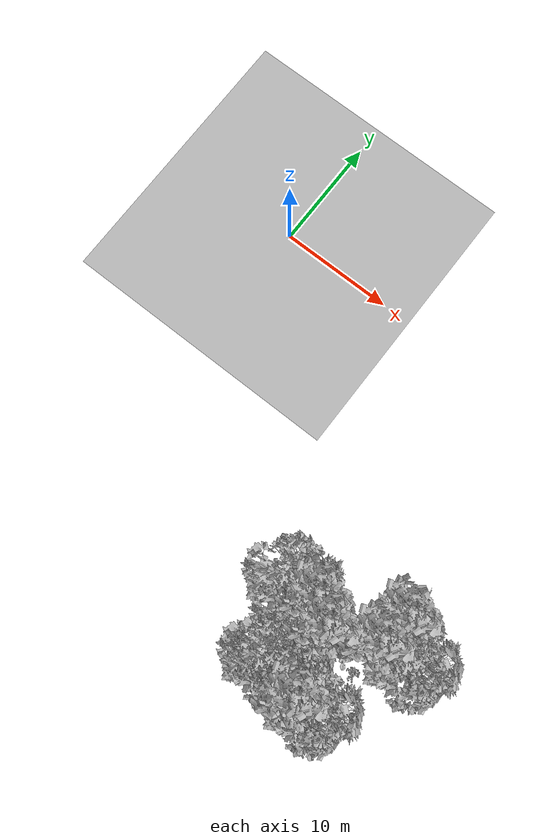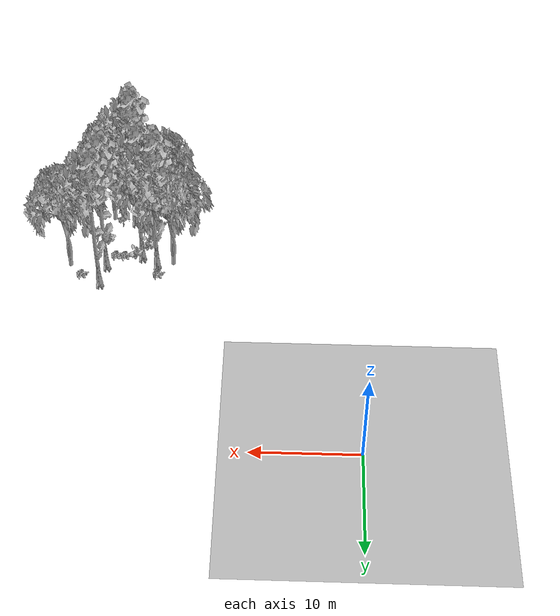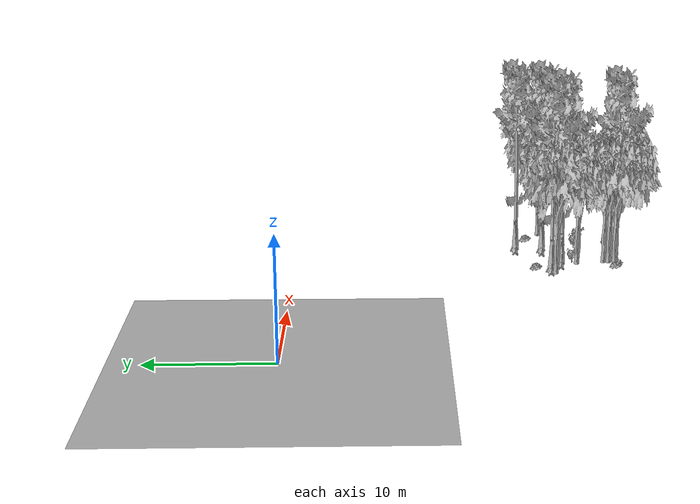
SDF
<sdf version="1.7">
 <world name="default">
  <model name="ground_plane">
   <static>1</static>
   <link name="link">
    <collision name="collision">
     <pose>-50 0 0 0 -0 0</pose>
     <geometry><plane><normal>0 0 1</normal><size>80 80</size></plane></geometry>
     <surface><contact><ode><min_depth>0.01</min_depth><max_vel>0</max_vel></ode></contact></surface>
    </collision>
    <visual name="grass">
     <cast_shadows>0</cast_shadows>
     <geometry>
      <mesh>
       <scale>0.46714285714285714 0.46714285714285714 0.1</scale>
       <uri>file://grass_plane/meshes/grass_plane.dae</uri>
      </mesh>
     </geometry>
    </visual>
   </link>
  </model>
  <model name="Tree 22">
   <static>1</static>
   <pose>24.61093063910306 -22.099798573518363 0 1.57079 -0 0</pose>
   <link name="link">
    <collision name="collision">
     <geometry><mesh><scale>3.5 5 3.5</scale><uri>model://tree_9/meshes/tree_9.obj</uri></mesh></geometry>
    </collision>
    <visual name="visual">
     <geometry><mesh><scale>3.5 5 3.5</scale><uri>model://tree_9/meshes/tree_9.obj</uri></mesh></geometry>
    </visual>
   </link>
  </model>
  <model name="Tree 118">
   <static>1</static>
   <pose>25.06233795883236 -19.751188143016158 0 1.57079 -0 0</pose>
   <link name="link">
    <collision name="collision">
     <geometry><mesh><scale>3.5 5 3.5</scale><uri>model://tree_9/meshes/tree_9.obj</uri></mesh></geometry>
    </collision>
    <visual name="visual">
     <geometry><mesh><scale>3.5 5 3.5</scale><uri>model://tree_9/meshes/tree_9.obj</uri></mesh></geometry>
    </visual>
   </link>
  </model>
  <model name="Tree 210">
   <static>1</static>
   <pose>21.211009468980002 -23.447928985658038 0 1.57079 -0 0</pose>
   <link name="link">
    <collision name="collision">
     <geometry><mesh><scale>3.5 5 3.5</scale><uri>model://tree_9/meshes/tree_9.obj</uri></mesh></geometry>
    </collision>
    <visual name="visual">
     <geometry><mesh><scale>3.5 5 3.5</scale><uri>model://tree_9/meshes/tree_9.obj</uri></mesh></geometry>
    </visual>
   </link>
  </model>
  <model name="Tree 284">
   <static>1</static>
   <pose>22.3522800145071 -28.369159853775486 0 1.57079 -0 0</pose>
   <link name="link">
    <collision name="collision">
     <geometry><mesh><scale>3.5 5 3.5</scale><uri>model://tree_9/meshes/tree_9.obj</uri></mesh></geometry>
    </collision>
    <visual name="visual">
     <geometry><mesh><scale>3.5 5 3.5</scale><uri>model://tree_9/meshes/tree_9.obj</uri></mesh></geometry>
    </visual>
   </link>
  </model>
  <model name="Tree 336">
   <static>1</static>
   <pose>19.67779719124666 -22.382257653513598 0 1.57079 -0 0</pose>
   <link name="link">
    <collision name="collision">
     <geometry><mesh><scale>3.5 5 3.5</scale><uri>model://tree_9/meshes/tree_9.obj</uri></mesh></geometry>
    </collision>
    <visual name="visual">
     <geometry><mesh><scale>3.5 5 3.5</scale><uri>model://tree_9/meshes/tree_9.obj</uri></mesh></geometry>
    </visual>
   </link>
  </model>
  <model name="Tree 345">
   <static>1</static>
   <pose>20.036384099519353 -27.986623376723692 0 1.57079 -0 0</pose>
   <link name="link">
    <collision name="collision">
     <geometry><mesh><scale>3.5 5 3.5</scale><uri>model://tree_2/meshes/tree_2.obj</uri></mesh></geometry>
    </collision>
    <visual name="visual">
     <geometry><mesh><scale>3.5 5 3.5</scale><uri>model://tree_2/meshes/tree_2.obj</uri></mesh></geometry>
    </visual>
   </link>
  </model>
  <model name="Tree 447">
   <static>1</static>
   <pose>17.979560691073615 -22.612262606566684 0 1.57079 -0 0</pose>
   <link name="link">
    <collision name="collision">
     <geometry><mesh><scale>3.5 5 3.5</scale><uri>model://tree_2/meshes/tree_2.obj</uri></mesh></geometry>
    </collision>
    <visual name="visual">
     <geometry><mesh><scale>3.5 5 3.5</scale><uri>model://tree_2/meshes/tree_2.obj</uri></mesh></geometry>
    </visual>
   </link>
  </model>
  <model name="Tree 494">
   <static>1</static>
   <pose>24.354481711630783 -28.76402890722 0 1.57079 -0 0</pose>
   <link name="link">
    <collision name="collision">
     <geometry><mesh><scale>3.5 5 3.5</scale><uri>model://tree_2/meshes/tree_2.obj</uri></mesh></geometry>
    </collision>
    <visual name="visual">
     <geometry><mesh><scale>3.5 5 3.5</scale><uri>model://tree_2/meshes/tree_2.obj</uri></mesh></geometry>
    </visual>
   </link>
  </model>
  <model name="Tree 496">
   <static>1</static>
   <pose>20.330879873167582 -24.713452092112576 0 1.57079 -0 0</pose>
   <link name="link">
    <collision name="collision">
     <geometry><mesh><scale>3.5 5 3.5</scale><uri>model://tree_2/meshes/tree_2.obj</uri></mesh></geometry>
    </collision>
    <visual name="visual">
     <geometry><mesh><scale>3.5 5 3.5</scale><uri>model://tree_2/meshes/tree_2.obj</uri></mesh></geometry>
    </visual>
   </link>
  </model>
  <model name="Tree 592">
   <static>1</static>
   <pose>20.643086307787293 -27.569086030416415 0 1.57079 -0 0</pose>
   <link name="link">
    <collision name="collision">
     <geometry><mesh><scale>3.5 5 3.5</scale><uri>model://tree_2/meshes/tree_2.obj</uri></mesh></geometry>
    </collision>
    <visual name="visual">
     <geometry><mesh><scale>3.5 5 3.5</scale><uri>model://tree_2/meshes/tree_2.obj</uri></mesh></geometry>
    </visual>
   </link>
  </model>
  <model name="Tree 615">
   <static>1</static>
   <pose>20.643252035565368 -27.104846149797446 0 1.57079 -0 0</pose>
   <link name="link">
    <collision name="collision">
     <geometry><mesh><scale>3.5 5 3.5</scale><uri>model://tree_2/meshes/tree_2.obj</uri></mesh></geometry>
    </collision>
    <visual name="visual">
     <geometry><mesh><scale>3.5 5 3.5</scale><uri>model://tree_2/meshes/tree_2.obj</uri></mesh></geometry>
    </visual>
   </link>
  </model>
  <model name="Tree 616">
   <static>1</static>
   <pose>28.03475863568353 -22.13498378864612 0 1.57079 -0 0</pose>
   <link name="link">
    <collision name="collision">
     <geometry><mesh><scale>3.5 5 3.5</scale><uri>model://tree_2/meshes/tree_2.obj</uri></mesh></geometry>
    </collision>
    <visual name="visual">
     <geometry><mesh><scale>3.5 5 3.5</scale><uri>model://tree_2/meshes/tree_2.obj</uri></mesh></geometry>
    </visual>
   </link>
  </model>
  <model name="Bush 138">
   <static>1</static>
   <pose>23.525785954117026 -27.611668987408287 0 1.57079 -0 0</pose>
   <link name="link">
    <collision name="collision">
     <geometry><mesh><scale>2 2 2</scale><uri>model://bush_5/meshes/bush_5.obj</uri></mesh></geometry>
     <surface><contact><collide_without_contact>false</collide_without_contact></contact></surface>
    </collision>
    <visual name="visual">
     <geometry><mesh><scale>2 2 2</scale><uri>model://bush_5/meshes/bush_5.obj</uri></mesh></geometry>
    </visual>
   </link>
  </model>
  <model name="Bush 247">
   <static>1</static>
   <pose>24.790756588505126 -25.00574235090193 0 1.57079 -0 0</pose>
   <link name="link">
    <collision name="collision">
     <geometry><mesh><scale>2 2 2</scale><uri>model://bush_0/meshes/bush_0.obj</uri></mesh></geometry>
     <surface><contact><collide_without_contact>false</collide_without_contact></contact></surface>
    </collision>
    <visual name="visual">
     <geometry><mesh><scale>2 2 2</scale><uri>model://bush_0/meshes/bush_0.obj</uri></mesh></geometry>
    </visual>
   </link>
  </model>
  <model name="Bush 348">
   <static>1</static>
   <pose>19.474194907489256 -21.05222436459826 0 1.57079 -0 0</pose>
   <link name="link">
    <collision name="collision">
     <geometry><mesh><scale>2 2 2</scale><uri>model://bush_2/meshes/bush_2.obj</uri></mesh></geometry>
     <surface><contact><collide_without_contact>false</collide_without_contact></contact></surface>
    </collision>
    <visual name="visual">
     <geometry><mesh><scale>2 2 2</scale><uri>model://bush_2/meshes/bush_2.obj</uri></mesh></geometry>
    </visual>
   </link>
  </model>
  <model name="Bush 354">
   <static>1</static>
   <pose>23.78028161159544 -23.53610552107618 0 1.57079 -0 0</pose>
   <link name="link">
    <collision name="collision">
     <geometry><mesh><scale>2 2 2</scale><uri>model://bush_2/meshes/bush_2.obj</uri></mesh></geometry>
     <surface><contact><collide_without_contact>false</collide_without_contact></contact></surface>
    </collision>
    <visual name="visual">
     <geometry><mesh><scale>2 2 2</scale><uri>model://bush_2/meshes/bush_2.obj</uri></mesh></geometry>
    </visual>
   </link>
  </model>
  <model name="Bush 358">
   <static>1</static>
   <pose>20.857570658186837 -24.327694317433746 0 1.57079 -0 0</pose>
   <link name="link">
    <collision name="collision">
     <geometry><mesh><scale>2 2 2</scale><uri>model://bush_0/meshes/bush_0.obj</uri></mesh></geometry>
     <surface><contact><collide_without_contact>false</collide_without_contact></contact></surface>
    </collision>
    <visual name="visual">
     <geometry><mesh><scale>2 2 2</scale><uri>model://bush_0/meshes/bush_0.obj</uri></mesh></geometry>
    </visual>
   </link>
  </model>
  <model name="Bush 405">
   <static>1</static>
   <pose>22.886073263374534 -23.50563286968063 0 1.57079 -0 0</pose>
   <link name="link">
    <collision name="collision">
     <geometry><mesh><scale>2 2 2</scale><uri>model://bush_2/meshes/bush_2.obj</uri></mesh></geometry>
     <surface><contact><collide_without_contact>false</collide_without_contact></contact></surface>
    </collision>
    <visual name="visual">
     <geometry><mesh><scale>2 2 2</scale><uri>model://bush_2/meshes/bush_2.obj</uri></mesh></geometry>
    </visual>
   </link>
  </model>
  <model name="Bush 409">
   <static>1</static>
   <pose>21.911818162234816 -23.07779534289841 0 1.57079 -0 0</pose>
   <link name="link">
    <collision name="collision">
     <geometry><mesh><scale>2 2 2</scale><uri>model://bush_0/meshes/bush_0.obj</uri></mesh></geometry>
     <surface><contact><collide_without_contact>false</collide_without_contact></contact></surface>
    </collision>
    <visual name="visual">
     <geometry><mesh><scale>2 2 2</scale><uri>model://bush_0/meshes/bush_0.obj</uri></mesh></geometry>
    </visual>
   </link>
  </model>
  <model name="Bush 416">
   <static>1</static>
   <pose>26.89252851639273 -20.858043160869066 0 1.57079 -0 0</pose>
   <link name="link">
    <collision name="collision">
     <geometry><mesh><scale>2 2 2</scale><uri>model://bush_2/meshes/bush_2.obj</uri></mesh></geometry>
     <surface><contact><collide_without_contact>false</collide_without_contact></contact></surface>
    </collision>
    <visual name="visual">
     <geometry><mesh><scale>2 2 2</scale><uri>model://bush_2/meshes/bush_2.obj</uri></mesh></geometry>
    </visual>
   </link>
  </model>
  <model name="Bush 448">
   <static>1</static>
   <pose>25.894549764195062 -25.310853328043528 0 1.57079 -0 0</pose>
   <link name="link">
    <collision name="collision">
     <geometry><mesh><scale>2 2 2</scale><uri>model://bush_5/meshes/bush_5.obj</uri></mesh></geometry>
     <surface><contact><collide_without_contact>false</collide_without_contact></contact></surface>
    </collision>
    <visual name="visual">
     <geometry><mesh><scale>2 2 2</scale><uri>model://bush_5/meshes/bush_5.obj</uri></mesh></geometry>
    </visual>
   </link>
  </model>
  <model name="Bush 473">
   <static>1</static>
   <pose>19.775988055363356 -28.082776905719165 0 1.57079 -0 0</pose>
   <link name="link">
    <collision name="collision">
     <geometry><mesh><scale>2 2 2</scale><uri>model://bush_2/meshes/bush_2.obj</uri></mesh></geometry>
     <surface><contact><collide_without_contact>false</collide_without_contact></contact></surface>
    </collision>
    <visual name="visual">
     <geometry><mesh><scale>2 2 2</scale><uri>model://bush_2/meshes/bush_2.obj</uri></mesh></geometry>
    </visual>
   </link>
  </model>
  <model name="Bush 498">
   <static>1</static>
   <pose>20.264174813070056 -28.26055712103753 0 1.57079 -0 0</pose>
   <link name="link">
    <collision name="collision">
     <geometry><mesh><scale>2 2 2</scale><uri>model://bush_2/meshes/bush_2.obj</uri></mesh></geometry>
     <surface><contact><collide_without_contact>false</collide_without_contact></contact></surface>
    </collision>
    <visual name="visual">
     <geometry><mesh><scale>2 2 2</scale><uri>model://bush_2/meshes/bush_2.obj</uri></mesh></geometry>
    </visual>
   </link>
  </model>
 </world>
</sdf>
